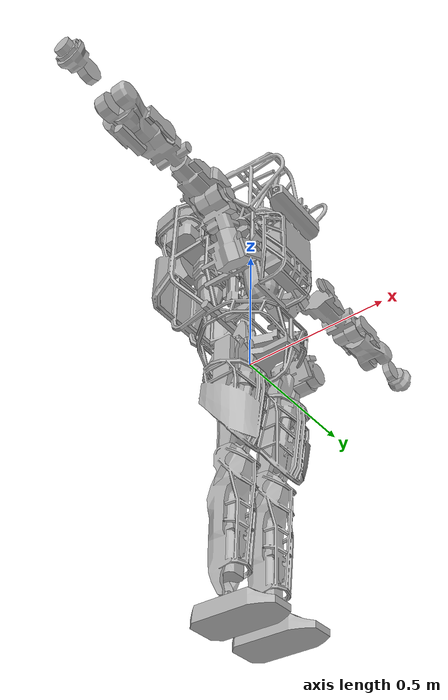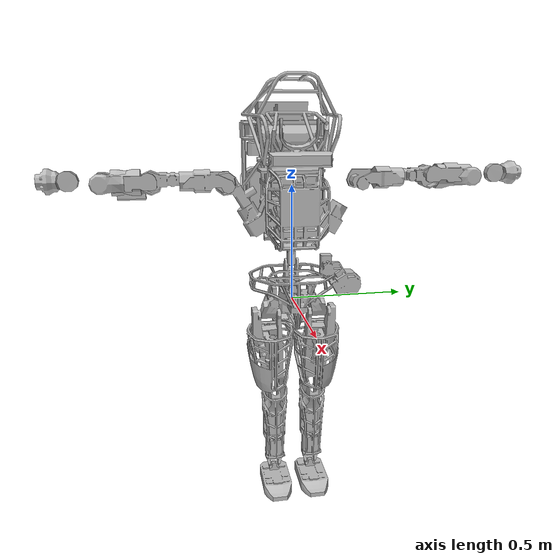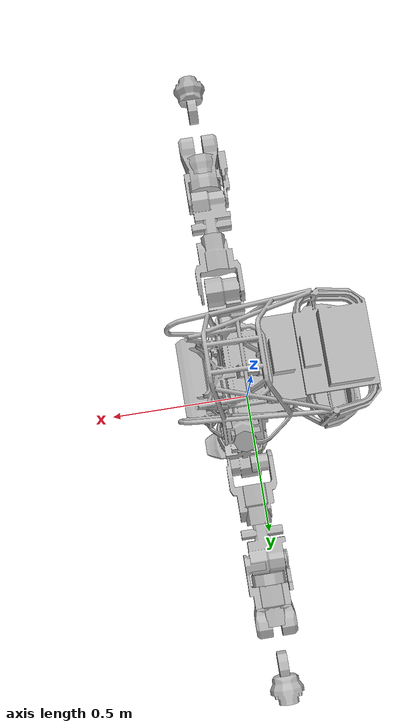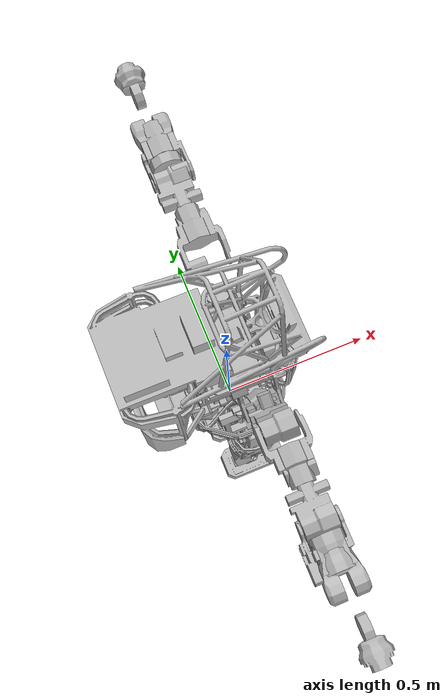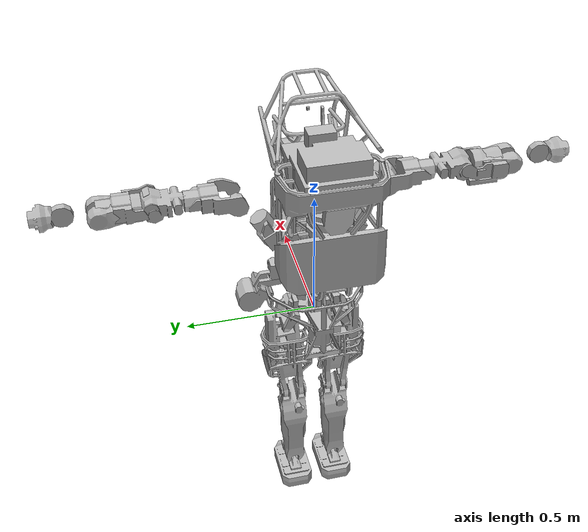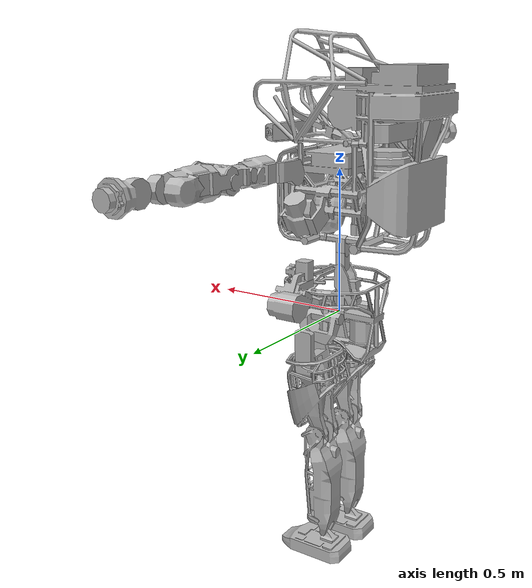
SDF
<sdf version='1.4'>
  <model name='drc_skeleton'>
    <link name='pelvis'>
      <pose>0 0 0 0 -0 0</pose>
      <inertial>
        <pose>0.0111 0 0.0271 0 -0 0</pose>
        <mass>17.882</mass>
        <inertia>
          <ixx>0.1244</ixx>
          <ixy>0.0008</ixy>
          <ixz>-0.0007</ixz>
          <iyy>0.0958</iyy>
          <iyz>-0.0005</iyz>
          <izz>0.1167</izz>
        </inertia>
      </inertial>
      <collision name='pelvis_collision'>
        <pose>0 0 0 0 -0 0</pose>
        <geometry>
          <mesh>
            <scale>1 1 1</scale>
            <uri>pelvis.stl</uri>
          </mesh>
        </geometry>
      </collision>
      <visual name='pelvis_visual'>
        <pose>0 0 0 0 -0 0</pose>
        <geometry>
          <mesh>
            <scale>1 1 1</scale>
            <uri>pelvis.dae</uri>
          </mesh>
        </geometry>
      </visual>
      <velocity_decay>
        <linear>0</linear>
        <angular>0</angular>
      </velocity_decay>
    </link>
    <link name='ltorso'>
      <pose>-0.0125 0 0 0 -0 0</pose>
      <inertial>
        <pose>-0.0112984 -3.15366e-06 0.0746835 0 -0 0</pose>
        <mass>2.409</mass>
        <inertia>
          <ixx>0.0039092</ixx>
          <ixy>-5.04491e-08</ixy>
          <ixz>-0.000342157</ixz>
          <iyy>0.00341694</iyy>
          <iyz>4.87119e-07</iyz>
          <izz>0.00174492</izz>
        </inertia>
      </inertial>
      <collision name='ltorso_collision'>
        <pose>0 0 0 0 -0 0</pose>
        <geometry>
          <mesh>
            <scale>1 1 1</scale>
            <uri>ltorso.stl</uri>
          </mesh>
        </geometry>
      </collision>
      <visual name='ltorso_visual'>
        <pose>0 0 0 0 -0 0</pose>
        <geometry>
          <mesh>
            <scale>1 1 1</scale>
            <uri>ltorso.dae</uri>
          </mesh>
        </geometry>
      </visual>
      <velocity_decay>
        <linear>0</linear>
        <angular>0</angular>
      </velocity_decay>
    </link>
    <joint name='back_bkz' type='revolute'>
      <child>ltorso</child>
      <parent>pelvis</parent>
      <axis>
        <xyz>0 0 1</xyz>
        <limit>
          <lower>-0.663225</lower>
          <upper>0.663225</upper>
          <effort>124.016</effort>
          <velocity>12</velocity>
        </limit>
        <dynamics>
          <damping>0.1</damping>
        </dynamics>
        <use_parent_model_frame>0</use_parent_model_frame>
      </axis>
    </joint>
    <link name='mtorso'>
      <pose>-0.0125 0 0.16197 0 -0 0</pose>
      <inertial>
        <pose>-0.00816266 -0.0131245 0.0305974 0 -0 0</pose>
        <mass>0.69</mass>
        <inertia>
          <ixx>0.000454181</ixx>
          <ixy>-6.10764e-05</ixy>
          <ixz>3.94009e-05</ixz>
          <iyy>0.000483282</iyy>
          <iyz>5.27463e-05</iyz>
          <izz>0.000444215</izz>
        </inertia>
      </inertial>
      <collision name='mtorso_collision'>
        <pose>0 0 0 0 -0 0</pose>
        <geometry>
          <mesh>
            <scale>1 1 1</scale>
            <uri>mtorso.stl</uri>
          </mesh>
        </geometry>
      </collision>
      <visual name='mtorso_visual'>
        <pose>0 0 0 0 -0 0</pose>
        <geometry>
          <mesh>
            <scale>1 1 1</scale>
            <uri>mtorso.dae</uri>
          </mesh>
        </geometry>
      </visual>
      <velocity_decay>
        <linear>0</linear>
        <angular>0</angular>
      </velocity_decay>
    </link>
    <joint name='back_bky' type='revolute'>
      <child>mtorso</child>
      <parent>ltorso</parent>
      <axis>
        <xyz>0 1 0</xyz>
        <limit>
          <lower>-0.610691</lower>
          <upper>0.438427</upper>
          <effort>206.843</effort>
          <velocity>12</velocity>
        </limit>
        <dynamics>
          <damping>0.1</damping>
        </dynamics>
        <use_parent_model_frame>0</use_parent_model_frame>
      </axis>
    </joint>
    <link name='utorso'>
      <pose>-0.0125 0 0.21197 0 -0 0</pose>
      <inertial>
        <pose>-0.0909481 5.04713e-05 0.301106 0 -0 0</pose>
        <mass>52.307</mass>
        <inertia>
          <ixx>1.4846</ixx>
          <ixy>0.00338676</ixy>
          <ixz>0.326214</ixz>
          <iyy>1.54533</iyy>
          <iyz>3.95833e-05</iyz>
          <izz>1.32284</izz>
        </inertia>
      </inertial>
      <collision name='utorso_collision'>
        <pose>0 0 0 0 -0 0</pose>
        <geometry>
          <mesh>
            <scale>1 1 1</scale>
            <uri>utorso.stl</uri>
          </mesh>
        </geometry>
      </collision>
      <collision name='utorso_collision_utorso_1'>
        <pose>0 0 0 0 -0 0</pose>
        <geometry>
          <mesh>
            <scale>1 1 1</scale>
            <uri>utorso_pack.stl</uri>
          </mesh>
        </geometry>
      </collision>
      <visual name='utorso_visual'>
        <pose>0 0 0 0 -0 0</pose>
        <geometry>
          <mesh>
            <scale>1 1 1</scale>
            <uri>utorso.dae</uri>
          </mesh>
        </geometry>
      </visual>
      <visual name='utorso_visual_utorso_1'>
        <pose>0 0 0 0 -0 0</pose>
        <geometry>
          <mesh>
            <scale>1 1 1</scale>
            <uri>utorso_pack.dae</uri>
          </mesh>
        </geometry>
      </visual>
      <visual name='utorso_visual_l_situational_awareness_camera_link'>
        <pose>0.216409 0.121799 0.406759 -1.5708 5.55112e-17 1.309</pose>
        <geometry>
          <box>
            <size>0.01 0.01 0.01</size>
          </box>
        </geometry>
      </visual>
      <visual name='utorso_visual_r_situational_awareness_camera_link'>
        <pose>0.216409 -0.121799 0.406759 1.5708 5.55112e-17 -1.309</pose>
        <geometry>
          <box>
            <size>0.01 0.01 0.01</size>
          </box>
        </geometry>
      </visual>
      <visual name='utorso_visual_rear_situational_awareness_camera_link'>
        <pose>-0.0026 0.0264 0.6649 0 -0 3.14159</pose>
        <geometry>
          <box>
            <size>0.01 0.01 0.01</size>
          </box>
        </geometry>
      </visual>
      <velocity_decay>
        <linear>0</linear>
        <angular>0</angular>
      </velocity_decay>
    </link>
    <joint name='back_bkx' type='revolute'>
      <child>utorso</child>
      <parent>mtorso</parent>
      <axis>
        <xyz>1 0 0</xyz>
        <limit>
          <lower>-0.698132</lower>
          <upper>0.698132</upper>
          <effort>200</effort>
          <velocity>12</velocity>
        </limit>
        <dynamics>
          <damping>0.1</damping>
        </dynamics>
        <use_parent_model_frame>0</use_parent_model_frame>
      </axis>
    </joint>
    <link name='l_clav'>
      <pose>0.05191 0.13866 0.31915 0 -0 0</pose>
      <inertial>
        <pose>0 0.048 0.084 0 -0 0</pose>
        <mass>3.45</mass>
        <inertia>
          <ixx>0.011</ixx>
          <ixy>0</ixy>
          <ixz>0</ixz>
          <iyy>0.009</iyy>
          <iyz>-0.004</iyz>
          <izz>0.004</izz>
        </inertia>
      </inertial>
      <collision name='l_clav_collision'>
        <pose>0 0 0 0 -0 0</pose>
        <geometry>
          <mesh>
            <scale>1 1 1</scale>
            <uri>l_clav.stl</uri>
          </mesh>
        </geometry>
      </collision>
      <visual name='l_clav_visual'>
        <pose>0 0 0 0 -0 0</pose>
        <geometry>
          <mesh>
            <scale>1 1 1</scale>
            <uri>l_clav.dae</uri>
          </mesh>
        </geometry>
      </visual>
      <velocity_decay>
        <linear>0</linear>
        <angular>0</angular>
      </velocity_decay>
    </link>
    <joint name='l_arm_shy' type='revolute'>
      <child>l_clav</child>
      <parent>utorso</parent>
      <axis>
        <xyz>0 0.5 0.866025</xyz>
        <limit>
          <lower>-1.5708</lower>
          <upper>0.785398</upper>
          <effort>212</effort>
          <velocity>12</velocity>
        </limit>
        <dynamics>
          <damping>0.1</damping>
        </dynamics>
        <use_parent_model_frame>0</use_parent_model_frame>
      </axis>
    </joint>
    <link name='l_scap'>
      <pose>0.05191 0.27901 0.51524 0 -0 0</pose>
      <inertial>
        <pose>0 0 0 0 -0 0</pose>
        <mass>3.012</mass>
        <inertia>
          <ixx>0.00319</ixx>
          <ixy>0</ixy>
          <ixz>0</ixz>
          <iyy>0.00583</iyy>
          <iyz>0</iyz>
          <izz>0.00583</izz>
        </inertia>
      </inertial>
      <collision name='l_scap_collision'>
        <pose>0 0 0 0 -0 0</pose>
        <geometry>
          <mesh>
            <scale>1 1 1</scale>
            <uri>l_scap.stl</uri>
          </mesh>
        </geometry>
      </collision>
      <visual name='l_scap_visual'>
        <pose>0 0 0 0 -0 0</pose>
        <geometry>
          <mesh>
            <scale>1 1 1</scale>
            <uri>l_scap.dae</uri>
          </mesh>
        </geometry>
      </visual>
      <velocity_decay>
        <linear>0</linear>
        <angular>0</angular>
      </velocity_decay>
    </link>
    <joint name='l_arm_shx' type='revolute'>
      <child>l_scap</child>
      <parent>l_clav</parent>
      <axis>
        <xyz>1 0 0</xyz>
        <limit>
          <lower>-1.5708</lower>
          <upper>1.5708</upper>
          <effort>170</effort>
          <velocity>12</velocity>
        </limit>
        <dynamics>
          <damping>0.1</damping>
        </dynamics>
        <use_parent_model_frame>0</use_parent_model_frame>
      </axis>
    </joint>
    <link name='l_uarm'>
      <pose>0.05191 0.46601 0.53124 0 -0 0</pose>
      <inertial>
        <pose>0 -0.065 0 0 -0 0</pose>
        <mass>3.388</mass>
        <inertia>
          <ixx>0.00656</ixx>
          <ixy>0</ixy>
          <ixz>0</ixz>
          <iyy>0.00358</iyy>
          <iyz>0</iyz>
          <izz>0.00656</izz>
        </inertia>
      </inertial>
      <collision name='l_uarm_collision'>
        <pose>0 0 0 0 -0 0</pose>
        <geometry>
          <mesh>
            <scale>1 1 1</scale>
            <uri>l_uarm.stl</uri>
          </mesh>
        </geometry>
      </collision>
      <visual name='l_uarm_visual'>
        <pose>0 0 0 0 -0 0</pose>
        <geometry>
          <mesh>
            <scale>1 1 1</scale>
            <uri>l_uarm.dae</uri>
          </mesh>
        </geometry>
      </visual>
      <velocity_decay>
        <linear>0</linear>
        <angular>0</angular>
      </velocity_decay>
    </link>
    <joint name='l_arm_ely' type='revolute'>
      <child>l_uarm</child>
      <parent>l_scap</parent>
      <axis>
        <xyz>0 1 0</xyz>
        <limit>
          <lower>0</lower>
          <upper>3.14159</upper>
          <effort>114</effort>
          <velocity>12</velocity>
        </limit>
        <dynamics>
          <damping>0.1</damping>
        </dynamics>
        <use_parent_model_frame>0</use_parent_model_frame>
      </axis>
    </joint>
    <link name='l_larm'>
      <pose>0.05191 0.58501 0.54045 0 -0 0</pose>
      <inertial>
        <pose>0 0 0 0 -0 0</pose>
        <mass>2.509</mass>
        <inertia>
          <ixx>0.00265</ixx>
          <ixy>0</ixy>
          <ixz>0</ixz>
          <iyy>0.00446</iyy>
          <iyz>0</iyz>
          <izz>0.00446</izz>
        </inertia>
      </inertial>
      <collision name='l_larm_collision'>
        <pose>0 0 0 0 -0 0</pose>
        <geometry>
          <mesh>
            <scale>1 1 1</scale>
            <uri>l_larm.stl</uri>
          </mesh>
        </geometry>
      </collision>
      <visual name='l_larm_visual'>
        <pose>0 0 0 0 -0 0</pose>
        <geometry>
          <mesh>
            <scale>1 1 1</scale>
            <uri>l_larm.dae</uri>
          </mesh>
        </geometry>
      </visual>
      <velocity_decay>
        <linear>0</linear>
        <angular>0</angular>
      </velocity_decay>
    </link>
    <joint name='l_arm_elx' type='revolute'>
      <child>l_larm</child>
      <parent>l_uarm</parent>
      <axis>
        <xyz>1 0 0</xyz>
        <limit>
          <lower>0</lower>
          <upper>2.35619</upper>
          <effort>114</effort>
          <velocity>12</velocity>
        </limit>
        <dynamics>
          <damping>0.1</damping>
        </dynamics>
        <use_parent_model_frame>0</use_parent_model_frame>
      </axis>
    </joint>
    <link name='l_farm'>
      <pose>0.05191 0.77201 0.53124 0 -0 0</pose>
      <inertial>
        <pose>0 -0.065 0 0 -0 0</pose>
        <mass>3.388</mass>
        <inertia>
          <ixx>0.00656</ixx>
          <ixy>0</ixy>
          <ixz>0</ixz>
          <iyy>0.00358</iyy>
          <iyz>0</iyz>
          <izz>0.00656</izz>
        </inertia>
      </inertial>
      <collision name='l_farm_collision'>
        <pose>0 0 0 0 -0 0</pose>
        <geometry>
          <mesh>
            <scale>1 1 1</scale>
            <uri>l_farm.stl</uri>
          </mesh>
        </geometry>
      </collision>
      <visual name='l_farm_visual'>
        <pose>0 0 0 0 -0 0</pose>
        <geometry>
          <mesh>
            <scale>1 1 1</scale>
            <uri>l_farm.dae</uri>
          </mesh>
        </geometry>
      </visual>
      <velocity_decay>
        <linear>0</linear>
        <angular>0</angular>
      </velocity_decay>
    </link>
    <joint name='l_arm_wry' type='revolute'>
      <child>l_farm</child>
      <parent>l_larm</parent>
      <axis>
        <xyz>0 1 0</xyz>
        <limit>
          <lower>0</lower>
          <upper>3.14159</upper>
          <effort>114</effort>
          <velocity>12</velocity>
        </limit>
        <dynamics>
          <damping>0.1</damping>
        </dynamics>
        <use_parent_model_frame>0</use_parent_model_frame>
      </axis>
    </joint>
    <link name='l_hand'>
      <pose>0.05191 0.89101 0.54045 0 -0 0</pose>
      <inertial>
        <pose>0 0 0 0 -0 0</pose>
        <mass>2.509</mass>
        <inertia>
          <ixx>0.00265</ixx>
          <ixy>0</ixy>
          <ixz>0</ixz>
          <iyy>0.00446</iyy>
          <iyz>0</iyz>
          <izz>0.00446</izz>
        </inertia>
      </inertial>
      <collision name='l_hand_collision'>
        <pose>0 0 0 0 -0 0</pose>
        <geometry>
          <mesh>
            <scale>1 1 1</scale>
            <uri>l_hand.stl</uri>
          </mesh>
        </geometry>
      </collision>
      <visual name='l_hand_visual'>
        <pose>0 0 0 0 -0 0</pose>
        <geometry>
          <mesh>
            <scale>1 1 1</scale>
            <uri>l_hand.dae</uri>
          </mesh>
        </geometry>
      </visual>
      <velocity_decay>
        <linear>0</linear>
        <angular>0</angular>
      </velocity_decay>
    </link>
    <joint name='l_arm_wrx' type='revolute'>
      <child>l_hand</child>
      <parent>l_farm</parent>
      <axis>
        <xyz>1 0 0</xyz>
        <limit>
          <lower>-1.1781</lower>
          <upper>1.1781</upper>
          <effort>60</effort>
          <velocity>12</velocity>
        </limit>
        <dynamics>
          <damping>0.1</damping>
        </dynamics>
        <use_parent_model_frame>0</use_parent_model_frame>
      </axis>
    </joint>
    <link name='r_clav'>
      <pose>0.05191 -0.13866 0.31915 0 -0 0</pose>
      <inertial>
        <pose>0 -0.048 0.084 0 -0 0</pose>
        <mass>3.45</mass>
        <inertia>
          <ixx>0.011</ixx>
          <ixy>0</ixy>
          <ixz>0</ixz>
          <iyy>0.009</iyy>
          <iyz>0.004</iyz>
          <izz>0.004</izz>
        </inertia>
      </inertial>
      <collision name='r_clav_collision'>
        <pose>0 0 0 0 -0 0</pose>
        <geometry>
          <mesh>
            <scale>1 1 1</scale>
            <uri>r_clav.stl</uri>
          </mesh>
        </geometry>
      </collision>
      <visual name='r_clav_visual'>
        <pose>0 0 0 0 -0 0</pose>
        <geometry>
          <mesh>
            <scale>1 1 1</scale>
            <uri>r_clav.dae</uri>
          </mesh>
        </geometry>
      </visual>
      <velocity_decay>
        <linear>0</linear>
        <angular>0</angular>
      </velocity_decay>
    </link>
    <joint name='r_arm_shy' type='revolute'>
      <child>r_clav</child>
      <parent>utorso</parent>
      <axis>
        <xyz>0 0.5 -0.866025</xyz>
        <limit>
          <lower>-1.5708</lower>
          <upper>0.785398</upper>
          <effort>212</effort>
          <velocity>12</velocity>
        </limit>
        <dynamics>
          <damping>0.1</damping>
        </dynamics>
        <use_parent_model_frame>0</use_parent_model_frame>
      </axis>
    </joint>
    <link name='r_scap'>
      <pose>0.05191 -0.27901 0.51524 0 -0 0</pose>
      <inertial>
        <pose>0 0 0 0 -0 0</pose>
        <mass>3.012</mass>
        <inertia>
          <ixx>0.00319</ixx>
          <ixy>0</ixy>
          <ixz>0</ixz>
          <iyy>0.00583</iyy>
          <iyz>0</iyz>
          <izz>0.00583</izz>
        </inertia>
      </inertial>
      <collision name='r_scap_collision'>
        <pose>0 0 0 0 -0 0</pose>
        <geometry>
          <mesh>
            <scale>1 1 1</scale>
            <uri>r_scap.stl</uri>
          </mesh>
        </geometry>
      </collision>
      <visual name='r_scap_visual'>
        <pose>0 0 0 0 -0 0</pose>
        <geometry>
          <mesh>
            <scale>1 1 1</scale>
            <uri>r_scap.dae</uri>
          </mesh>
        </geometry>
      </visual>
      <velocity_decay>
        <linear>0</linear>
        <angular>0</angular>
      </velocity_decay>
    </link>
    <joint name='r_arm_shx' type='revolute'>
      <child>r_scap</child>
      <parent>r_clav</parent>
      <axis>
        <xyz>1 0 0</xyz>
        <limit>
          <lower>-1.5708</lower>
          <upper>1.5708</upper>
          <effort>170</effort>
          <velocity>12</velocity>
        </limit>
        <dynamics>
          <damping>0.1</damping>
        </dynamics>
        <use_parent_model_frame>0</use_parent_model_frame>
      </axis>
    </joint>
    <link name='r_uarm'>
      <pose>0.05191 -0.46601 0.53124 0 -0 0</pose>
      <inertial>
        <pose>0 0.065 0 0 -0 0</pose>
        <mass>3.388</mass>
        <inertia>
          <ixx>0.00656</ixx>
          <ixy>0</ixy>
          <ixz>0</ixz>
          <iyy>0.00358</iyy>
          <iyz>0</iyz>
          <izz>0.00656</izz>
        </inertia>
      </inertial>
      <collision name='r_uarm_collision'>
        <pose>0 0 0 0 -0 0</pose>
        <geometry>
          <mesh>
            <scale>1 1 1</scale>
            <uri>r_uarm.stl</uri>
          </mesh>
        </geometry>
      </collision>
      <visual name='r_uarm_visual'>
        <pose>0 0 0 0 -0 0</pose>
        <geometry>
          <mesh>
            <scale>1 1 1</scale>
            <uri>r_uarm.dae</uri>
          </mesh>
        </geometry>
      </visual>
      <velocity_decay>
        <linear>0</linear>
        <angular>0</angular>
      </velocity_decay>
    </link>
    <joint name='r_arm_ely' type='revolute'>
      <child>r_uarm</child>
      <parent>r_scap</parent>
      <axis>
        <xyz>0 1 0</xyz>
        <limit>
          <lower>0</lower>
          <upper>3.14159</upper>
          <effort>114</effort>
          <velocity>12</velocity>
        </limit>
        <dynamics>
          <damping>0.1</damping>
        </dynamics>
        <use_parent_model_frame>0</use_parent_model_frame>
      </axis>
    </joint>
    <link name='r_larm'>
      <pose>0.05191 -0.58501 0.54045 0 -0 0</pose>
      <inertial>
        <pose>0 0 0 0 -0 0</pose>
        <mass>2.509</mass>
        <inertia>
          <ixx>0.00265</ixx>
          <ixy>0</ixy>
          <ixz>0</ixz>
          <iyy>0.00446</iyy>
          <iyz>0</iyz>
          <izz>0.00446</izz>
        </inertia>
      </inertial>
      <collision name='r_larm_collision'>
        <pose>0 0 0 0 -0 0</pose>
        <geometry>
          <mesh>
            <scale>1 1 1</scale>
            <uri>r_larm.stl</uri>
          </mesh>
        </geometry>
      </collision>
      <visual name='r_larm_visual'>
        <pose>0 0 0 0 -0 0</pose>
        <geometry>
          <mesh>
            <scale>1 1 1</scale>
            <uri>r_larm.dae</uri>
          </mesh>
        </geometry>
      </visual>
      <velocity_decay>
        <linear>0</linear>
        <angular>0</angular>
      </velocity_decay>
    </link>
    <joint name='r_arm_elx' type='revolute'>
      <child>r_larm</child>
      <parent>r_uarm</parent>
      <axis>
        <xyz>1 0 0</xyz>
        <limit>
          <lower>-2.35619</lower>
          <upper>0</upper>
          <effort>114</effort>
          <velocity>12</velocity>
        </limit>
        <dynamics>
          <damping>0.1</damping>
        </dynamics>
        <use_parent_model_frame>0</use_parent_model_frame>
      </axis>
    </joint>
    <link name='r_farm'>
      <pose>0.05191 -0.77201 0.53124 0 -0 0</pose>
      <inertial>
        <pose>0 0.065 0 0 -0 0</pose>
        <mass>3.388</mass>
        <inertia>
          <ixx>0.00656</ixx>
          <ixy>0</ixy>
          <ixz>0</ixz>
          <iyy>0.00358</iyy>
          <iyz>0</iyz>
          <izz>0.00656</izz>
        </inertia>
      </inertial>
      <collision name='r_farm_collision'>
        <pose>0 0 0 0 -0 0</pose>
        <geometry>
          <mesh>
            <scale>1 1 1</scale>
            <uri>r_farm.stl</uri>
          </mesh>
        </geometry>
      </collision>
      <visual name='r_farm_visual'>
        <pose>0 0 0 0 -0 0</pose>
        <geometry>
          <mesh>
            <scale>1 1 1</scale>
            <uri>r_farm.dae</uri>
          </mesh>
        </geometry>
      </visual>
      <velocity_decay>
        <linear>0</linear>
        <angular>0</angular>
      </velocity_decay>
    </link>
    <joint name='r_arm_wry' type='revolute'>
      <child>r_farm</child>
      <parent>r_larm</parent>
      <axis>
        <xyz>0 1 0</xyz>
        <limit>
          <lower>0</lower>
          <upper>3.14159</upper>
          <effort>114</effort>
          <velocity>12</velocity>
        </limit>
        <dynamics>
          <damping>0.1</damping>
        </dynamics>
        <use_parent_model_frame>0</use_parent_model_frame>
      </axis>
    </joint>
    <link name='r_hand'>
      <pose>0.05191 -0.89101 0.54045 0 -0 0</pose>
      <inertial>
        <pose>0 0 0 0 -0 0</pose>
        <mass>2.509</mass>
        <inertia>
          <ixx>0.00265</ixx>
          <ixy>0</ixy>
          <ixz>0</ixz>
          <iyy>0.00446</iyy>
          <iyz>0</iyz>
          <izz>0.00446</izz>
        </inertia>
      </inertial>
      <collision name='r_hand_collision'>
        <pose>0 0 0 0 -0 0</pose>
        <geometry>
          <mesh>
            <scale>1 1 1</scale>
            <uri>r_hand.stl</uri>
          </mesh>
        </geometry>
      </collision>
      <visual name='r_hand_visual'>
        <pose>0 0 0 0 -0 0</pose>
        <geometry>
          <mesh>
            <scale>1 1 1</scale>
            <uri>r_hand.dae</uri>
          </mesh>
        </geometry>
      </visual>
      <velocity_decay>
        <linear>0</linear>
        <angular>0</angular>
      </velocity_decay>
    </link>
    <joint name='r_arm_wrx' type='revolute'>
      <child>r_hand</child>
      <parent>r_farm</parent>
      <axis>
        <xyz>1 0 0</xyz>
        <limit>
          <lower>-1.1781</lower>
          <upper>1.1781</upper>
          <effort>60</effort>
          <velocity>12</velocity>
        </limit>
        <dynamics>
          <damping>0.1</damping>
        </dynamics>
        <use_parent_model_frame>0</use_parent_model_frame>
      </axis>
    </joint>
    <link name='l_uglut'>
      <pose>0 0.089 0 0 -0 0</pose>
      <inertial>
        <pose>0.00529262 -0.00344732 0.00313046 0 -0 0</pose>
        <mass>0.648</mass>
        <inertia>
          <ixx>0.00074276</ixx>
          <ixy>-3.79607e-08</ixy>
          <ixz>-2.79549e-05</ixz>
          <iyy>0.000688179</iyy>
          <iyz>-3.2735e-08</iyz>
          <izz>0.00041242</izz>
        </inertia>
      </inertial>
      <collision name='l_uglut_collision'>
        <pose>0 0 0 0 -0 0</pose>
        <geometry>
          <mesh>
            <scale>1 1 1</scale>
            <uri>l_uglut.stl</uri>
          </mesh>
        </geometry>
      </collision>
      <visual name='l_uglut_visual'>
        <pose>0 0 0 0 -0 0</pose>
        <geometry>
          <mesh>
            <scale>1 1 1</scale>
            <uri>l_uglut.dae</uri>
          </mesh>
        </geometry>
      </visual>
      <velocity_decay>
        <linear>0</linear>
        <angular>0</angular>
      </velocity_decay>
    </link>
    <joint name='l_leg_hpz' type='revolute'>
      <child>l_uglut</child>
      <parent>pelvis</parent>
      <axis>
        <xyz>0 0 1</xyz>
        <limit>
          <lower>-0.174533</lower>
          <upper>1.22173</upper>
          <effort>110</effort>
          <velocity>12</velocity>
        </limit>
        <dynamics>
          <damping>0.1</damping>
        </dynamics>
        <use_parent_model_frame>0</use_parent_model_frame>
      </axis>
    </joint>
    <link name='l_lglut'>
      <pose>0 0.089 0 0 -0 0</pose>
      <inertial>
        <pose>0.0133341 0.0170484 -0.0312052 0 -0 0</pose>
        <mass>0.866</mass>
        <inertia>
          <ixx>0.000691326</ixx>
          <ixy>-2.24344e-05</ixy>
          <ixz>2.50508e-06</ixz>
          <iyy>0.00126856</iyy>
          <iyz>0.000137862</iyz>
          <izz>0.00106487</izz>
        </inertia>
      </inertial>
      <collision name='l_lglut_collision'>
        <pose>0 0 0 0 -0 0</pose>
        <geometry>
          <mesh>
            <scale>1 1 1</scale>
            <uri>l_lglut.stl</uri>
          </mesh>
        </geometry>
      </collision>
      <visual name='l_lglut_visual'>
        <pose>0 0 0 0 -0 0</pose>
        <geometry>
          <mesh>
            <scale>1 1 1</scale>
            <uri>l_lglut.dae</uri>
          </mesh>
        </geometry>
      </visual>
      <velocity_decay>
        <linear>0</linear>
        <angular>0</angular>
      </velocity_decay>
    </link>
    <joint name='l_leg_hpx' type='revolute'>
      <child>l_lglut</child>
      <parent>l_uglut</parent>
      <axis>
        <xyz>1 0 0</xyz>
        <limit>
          <lower>-0.523599</lower>
          <upper>0.523599</upper>
          <effort>180</effort>
          <velocity>12</velocity>
        </limit>
        <dynamics>
          <damping>0.1</damping>
        </dynamics>
        <use_parent_model_frame>0</use_parent_model_frame>
      </axis>
    </joint>
    <link name='l_uleg'>
      <pose>0.05 0.089 -0.05 0 -0 0</pose>
      <inertial>
        <pose>0 0 -0.21 0 -0 0</pose>
        <mass>9.209</mass>
        <inertia>
          <ixx>0.09</ixx>
          <ixy>0</ixy>
          <ixz>0</ixz>
          <iyy>0.09</iyy>
          <iyz>0</iyz>
          <izz>0.02</izz>
        </inertia>
      </inertial>
      <collision name='l_uleg_collision'>
        <pose>0 0 0 0 -0 0</pose>
        <geometry>
          <mesh>
            <scale>1 1 1</scale>
            <uri>l_uleg.stl</uri>
          </mesh>
        </geometry>
      </collision>
      <visual name='l_uleg_visual'>
        <pose>0 0 0 0 -0 0</pose>
        <geometry>
          <mesh>
            <scale>1 1 1</scale>
            <uri>l_uleg.dae</uri>
          </mesh>
        </geometry>
      </visual>
      <velocity_decay>
        <linear>0</linear>
        <angular>0</angular>
      </velocity_decay>
    </link>
    <joint name='l_leg_hpy' type='revolute'>
      <child>l_uleg</child>
      <parent>l_lglut</parent>
      <axis>
        <xyz>0 1 0</xyz>
        <limit>
          <lower>-1.72072</lower>
          <upper>0.524821</upper>
          <effort>260</effort>
          <velocity>12</velocity>
        </limit>
        <dynamics>
          <damping>0.1</damping>
        </dynamics>
        <use_parent_model_frame>0</use_parent_model_frame>
      </axis>
    </joint>
    <link name='l_lleg'>
      <pose>0 0.089 -0.424 0 -0 0</pose>
      <inertial>
        <pose>0.001 0 -0.187 0 -0 0</pose>
        <mass>5.479</mass>
        <inertia>
          <ixx>0.077</ixx>
          <ixy>0</ixy>
          <ixz>-0.003</ixz>
          <iyy>0.076</iyy>
          <iyz>0</iyz>
          <izz>0.01</izz>
        </inertia>
      </inertial>
      <collision name='l_lleg_collision'>
        <pose>0 0 0 0 -0 0</pose>
        <geometry>
          <mesh>
            <scale>1 1 1</scale>
            <uri>l_lleg.stl</uri>
          </mesh>
        </geometry>
      </collision>
      <visual name='l_lleg_visual'>
        <pose>0 0 0 0 -0 0</pose>
        <geometry>
          <mesh>
            <scale>1 1 1</scale>
            <uri>l_lleg.dae</uri>
          </mesh>
        </geometry>
      </visual>
      <velocity_decay>
        <linear>0</linear>
        <angular>0</angular>
      </velocity_decay>
    </link>
    <joint name='l_leg_kny' type='revolute'>
      <child>l_lleg</child>
      <parent>l_uleg</parent>
      <axis>
        <xyz>0 1 0</xyz>
        <limit>
          <lower>0</lower>
          <upper>2.38569</upper>
          <effort>220</effort>
          <velocity>12</velocity>
        </limit>
        <dynamics>
          <damping>0.1</damping>
        </dynamics>
        <use_parent_model_frame>0</use_parent_model_frame>
      </axis>
    </joint>
    <link name='l_talus'>
      <pose>0 0.089 -0.846 0 -0 0</pose>
      <inertial>
        <pose>0 0 0 0 -0 0</pose>
        <mass>0.125</mass>
        <inertia>
          <ixx>1.01674e-05</ixx>
          <ixy>0</ixy>
          <ixz>0</ixz>
          <iyy>8.42775e-06</iyy>
          <iyz>0</iyz>
          <izz>1.30101e-05</izz>
        </inertia>
      </inertial>
      <collision name='l_talus_collision'>
        <pose>0 0 0 0 -0 0</pose>
        <geometry>
          <mesh>
            <scale>1 1 1</scale>
            <uri>l_talus.stl</uri>
          </mesh>
        </geometry>
      </collision>
      <visual name='l_talus_visual'>
        <pose>0 0 0 0 -0 0</pose>
        <geometry>
          <mesh>
            <scale>1 1 1</scale>
            <uri>l_talus.dae</uri>
          </mesh>
        </geometry>
      </visual>
      <velocity_decay>
        <linear>0</linear>
        <angular>0</angular>
      </velocity_decay>
    </link>
    <joint name='l_leg_aky' type='revolute'>
      <child>l_talus</child>
      <parent>l_lleg</parent>
      <axis>
        <xyz>0 1 0</xyz>
        <limit>
          <lower>-1</lower>
          <upper>0.7</upper>
          <effort>700</effort>
          <velocity>12</velocity>
        </limit>
        <dynamics>
          <damping>0.1</damping>
        </dynamics>
        <use_parent_model_frame>0</use_parent_model_frame>
      </axis>
    </joint>
    <link name='l_foot'>
      <pose>0 0.089 -0.846 0 -0 0</pose>
      <inertial>
        <pose>0.027 0 -0.067 0 -0 0</pose>
        <mass>2.05</mass>
        <inertia>
          <ixx>0.002</ixx>
          <ixy>0</ixy>
          <ixz>0</ixz>
          <iyy>0.007</iyy>
          <iyz>0</iyz>
          <izz>0.008</izz>
        </inertia>
      </inertial>
      <soft_shape>
        <total_mass>0.5</total_mass>
        <pose>0.05 0 -0.06 0 0 0</pose>
        <geometry>
          <box>
            <size>0.275 0.15 0.075</size>
            <frags>3 3 3</frags>
          </box>
        </geometry>
        <kv>50000.0</kv>
        <ke>100.0</ke>
        <damp>4000.0</damp>
      </soft_shape>
      <collision name='l_foot_collision'>
        <pose>0 0 0 0 -0 0</pose>
        <geometry>
          <mesh>
            <scale>1 1 1</scale>
            <uri>l_foot.stl</uri>
          </mesh>
        </geometry>
      </collision>
      <visual name='l_foot_visual'>
        <pose>0 0 0 0 -0 0</pose>
        <geometry>
          <mesh>
            <scale>1 1 1</scale>
            <uri>l_foot.dae</uri>
          </mesh>
        </geometry>
      </visual>
      <velocity_decay>
        <linear>0</linear>
        <angular>0</angular>
      </velocity_decay>
    </link>
    <joint name='l_leg_akx' type='revolute'>
      <child>l_foot</child>
      <parent>l_talus</parent>
      <axis>
        <xyz>1 0 0</xyz>
        <limit>
          <lower>-0.8</lower>
          <upper>0.8</upper>
          <effort>90</effort>
          <velocity>12</velocity>
        </limit>
        <dynamics>
          <damping>0.1</damping>
        </dynamics>
        <use_parent_model_frame>0</use_parent_model_frame>
      </axis>
    </joint>
    <link name='r_uglut'>
      <pose>0 -0.089 0 0 -0 0</pose>
      <inertial>
        <pose>0.00529262 0.00344732 0.00313046 0 -0 0</pose>
        <mass>0.648</mass>
        <inertia>
          <ixx>0.00074276</ixx>
          <ixy>3.79607e-08</ixy>
          <ixz>-2.79549e-05</ixz>
          <iyy>0.000688179</iyy>
          <iyz>3.2735e-08</iyz>
          <izz>0.00041242</izz>
        </inertia>
      </inertial>
      <collision name='r_uglut_collision'>
        <pose>0 0 0 0 -0 0</pose>
        <geometry>
          <mesh>
            <scale>1 1 1</scale>
            <uri>r_uglut.stl</uri>
          </mesh>
        </geometry>
      </collision>
      <visual name='r_uglut_visual'>
        <pose>0 0 0 0 -0 0</pose>
        <geometry>
          <mesh>
            <scale>1 1 1</scale>
            <uri>r_uglut.dae</uri>
          </mesh>
        </geometry>
      </visual>
      <velocity_decay>
        <linear>0</linear>
        <angular>0</angular>
      </velocity_decay>
    </link>
    <joint name='r_leg_hpz' type='revolute'>
      <child>r_uglut</child>
      <parent>pelvis</parent>
      <axis>
        <xyz>0 0 1</xyz>
        <limit>
          <lower>-1.22173</lower>
          <upper>0.174533</upper>
          <effort>110</effort>
          <velocity>12</velocity>
        </limit>
        <dynamics>
          <damping>0.1</damping>
        </dynamics>
        <use_parent_model_frame>0</use_parent_model_frame>
      </axis>
    </joint>
    <link name='r_lglut'>
      <pose>0 -0.089 0 0 -0 0</pose>
      <inertial>
        <pose>0.0133341 -0.0170484 -0.0312052 0 -0 0</pose>
        <mass>0.866</mass>
        <inertia>
          <ixx>0.000691326</ixx>
          <ixy>2.24344e-05</ixy>
          <ixz>2.50508e-06</ixz>
          <iyy>0.00126856</iyy>
          <iyz>-0.000137862</iyz>
          <izz>0.00106487</izz>
        </inertia>
      </inertial>
      <collision name='r_lglut_collision'>
        <pose>0 0 0 0 -0 0</pose>
        <geometry>
          <mesh>
            <scale>1 1 1</scale>
            <uri>r_lglut.stl</uri>
          </mesh>
        </geometry>
      </collision>
      <visual name='r_lglut_visual'>
        <pose>0 0 0 0 -0 0</pose>
        <geometry>
          <mesh>
            <scale>1 1 1</scale>
            <uri>r_lglut.dae</uri>
          </mesh>
        </geometry>
      </visual>
      <velocity_decay>
        <linear>0</linear>
        <angular>0</angular>
      </velocity_decay>
    </link>
    <joint name='r_leg_hpx' type='revolute'>
      <child>r_lglut</child>
      <parent>r_uglut</parent>
      <axis>
        <xyz>1 0 0</xyz>
        <limit>
          <lower>-0.523599</lower>
          <upper>0.523599</upper>
          <effort>180</effort>
          <velocity>12</velocity>
        </limit>
        <dynamics>
          <damping>0.1</damping>
        </dynamics>
        <use_parent_model_frame>0</use_parent_model_frame>
      </axis>
    </joint>
    <link name='r_uleg'>
      <pose>0.05 -0.089 -0.05 0 -0 0</pose>
      <inertial>
        <pose>0 0 -0.21 0 -0 0</pose>
        <mass>9.209</mass>
        <inertia>
          <ixx>0.09</ixx>
          <ixy>0</ixy>
          <ixz>0</ixz>
          <iyy>0.09</iyy>
          <iyz>0</iyz>
          <izz>0.02</izz>
        </inertia>
      </inertial>
      <collision name='r_uleg_collision'>
        <pose>0 0 0 0 -0 0</pose>
        <geometry>
          <mesh>
            <scale>1 1 1</scale>
            <uri>r_uleg.stl</uri>
          </mesh>
        </geometry>
      </collision>
      <visual name='r_uleg_visual'>
        <pose>0 0 0 0 -0 0</pose>
        <geometry>
          <mesh>
            <scale>1 1 1</scale>
            <uri>r_uleg.dae</uri>
          </mesh>
        </geometry>
      </visual>
      <velocity_decay>
        <linear>0</linear>
        <angular>0</angular>
      </velocity_decay>
    </link>
    <joint name='r_leg_hpy' type='revolute'>
      <child>r_uleg</child>
      <parent>r_lglut</parent>
      <axis>
        <xyz>0 1 0</xyz>
        <limit>
          <lower>-1.72072</lower>
          <upper>0.524821</upper>
          <effort>260</effort>
          <velocity>12</velocity>
        </limit>
        <dynamics>
          <damping>0.1</damping>
        </dynamics>
        <use_parent_model_frame>0</use_parent_model_frame>
      </axis>
    </joint>
    <link name='r_lleg'>
      <pose>0 -0.089 -0.424 0 -0 0</pose>
      <inertial>
        <pose>0.001 0 -0.187 0 -0 0</pose>
        <mass>5.479</mass>
        <inertia>
          <ixx>0.077</ixx>
          <ixy>-0</ixy>
          <ixz>-0.003</ixz>
          <iyy>0.076</iyy>
          <iyz>-0</iyz>
          <izz>0.01</izz>
        </inertia>
      </inertial>
      <collision name='r_lleg_collision'>
        <pose>0 0 0 0 -0 0</pose>
        <geometry>
          <mesh>
            <scale>1 1 1</scale>
            <uri>r_lleg.stl</uri>
          </mesh>
        </geometry>
      </collision>
      <visual name='r_lleg_visual'>
        <pose>0 0 0 0 -0 0</pose>
        <geometry>
          <mesh>
            <scale>1 1 1</scale>
            <uri>r_lleg.dae</uri>
          </mesh>
        </geometry>
      </visual>
      <velocity_decay>
        <linear>0</linear>
        <angular>0</angular>
      </velocity_decay>
    </link>
    <joint name='r_leg_kny' type='revolute'>
      <child>r_lleg</child>
      <parent>r_uleg</parent>
      <axis>
        <xyz>0 1 0</xyz>
        <limit>
          <lower>0</lower>
          <upper>2.38569</upper>
          <effort>220</effort>
          <velocity>12</velocity>
        </limit>
        <dynamics>
          <damping>0.1</damping>
        </dynamics>
        <use_parent_model_frame>0</use_parent_model_frame>
      </axis>
    </joint>
    <link name='r_talus'>
      <pose>0 -0.089 -0.846 0 -0 0</pose>
      <inertial>
        <pose>0 0 0 0 -0 0</pose>
        <mass>0.125</mass>
        <inertia>
          <ixx>1.01674e-05</ixx>
          <ixy>0</ixy>
          <ixz>0</ixz>
          <iyy>8.42775e-06</iyy>
          <iyz>0</iyz>
          <izz>1.30101e-05</izz>
        </inertia>
      </inertial>
      <collision name='r_talus_collision'>
        <pose>0 0 0 0 -0 0</pose>
        <geometry>
          <mesh>
            <scale>1 1 1</scale>
            <uri>r_talus.stl</uri>
          </mesh>
        </geometry>
      </collision>
      <visual name='r_talus_visual'>
        <pose>0 0 0 0 -0 0</pose>
        <geometry>
          <mesh>
            <scale>1 1 1</scale>
            <uri>r_talus.dae</uri>
          </mesh>
        </geometry>
      </visual>
      <velocity_decay>
        <linear>0</linear>
        <angular>0</angular>
      </velocity_decay>
    </link>
    <joint name='r_leg_aky' type='revolute'>
      <child>r_talus</child>
      <parent>r_lleg</parent>
      <axis>
        <xyz>0 1 0</xyz>
        <limit>
          <lower>-1</lower>
          <upper>0.7</upper>
          <effort>700</effort>
          <velocity>12</velocity>
        </limit>
        <dynamics>
          <damping>0.1</damping>
        </dynamics>
        <use_parent_model_frame>0</use_parent_model_frame>
      </axis>
    </joint>
    <link name='r_foot'>
      <pose>0 -0.089 -0.846 0 -0 0</pose>
      <inertial>
        <pose>0.027 0 -0.067 0 -0 0</pose>
        <mass>2.05</mass>
        <inertia>
          <ixx>0.002</ixx>
          <ixy>0</ixy>
          <ixz>0</ixz>
          <iyy>0.007</iyy>
          <iyz>0</iyz>
          <izz>0.008</izz>
        </inertia>
      </inertial>
      <soft_shape>
        <total_mass>0.5</total_mass>
        <pose>0.05 0 -0.06 0 0 0</pose>
        <geometry>
          <box>
            <size>0.275 0.15 0.075</size>
            <frags>3 3 3</frags>
          </box>
        </geometry>
        <kv>50000.0</kv>
        <ke>100.0</ke>
        <damp>4000.0</damp>
      </soft_shape>
      <collision name='r_foot_collision'>
        <pose>0 0 0 0 -0 0</pose>
        <geometry>
          <mesh>
            <scale>1 1 1</scale>
            <uri>r_foot.stl</uri>
          </mesh>
        </geometry>
      </collision>
      <visual name='r_foot_visual'>
        <pose>0 0 0 0 -0 0</pose>
        <geometry>
          <mesh>
            <scale>1 1 1</scale>
            <uri>r_foot.dae</uri>
          </mesh>
        </geometry>
      </visual>
      <velocity_decay>
        <linear>0</linear>
        <angular>0</angular>
      </velocity_decay>
    </link>
    <joint name='r_leg_akx' type='revolute'>
      <child>r_foot</child>
      <parent>r_talus</parent>
      <axis>
        <xyz>1 0 0</xyz>
        <limit>
          <lower>-0.8</lower>
          <upper>0.8</upper>
          <effort>90</effort>
          <velocity>12</velocity>
        </limit>
        <dynamics>
          <damping>0.1</damping>
        </dynamics>
        <use_parent_model_frame>0</use_parent_model_frame>
      </axis>
    </joint>
  </model>
</sdf>
